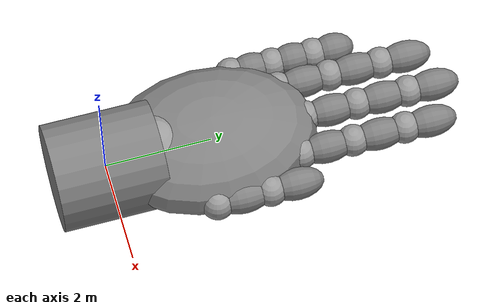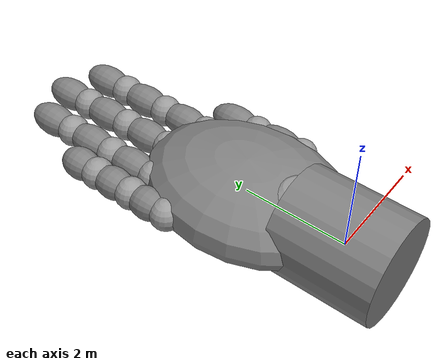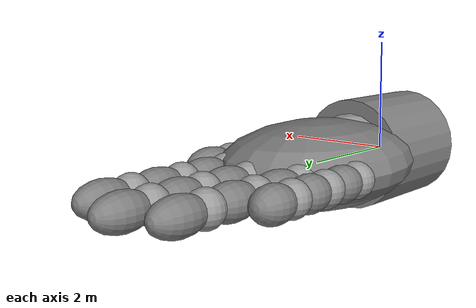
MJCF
<mujoco model="HandV3">
  <compiler angle="radian" coordinate="local" inertiafromgeom="true" settotalmass="14"/>
  <option timestep="0.01" gravity="0 0 0" iterations="20" integrator="Euler"/>
  <default>
    <joint armature='0.04' damping="0.1" limited="true"/>
    <geom friction=".0 .0 .0" density="300" margin="0.002" condim="1" contype="0" conaffinity="0"/>
  </default>

  <worldbody>
    <light diffuse=".5 .5 .5" pos="0 0 3" dir="0 0 -1"/>
    <body name="hand" pos="0 0 0">
      <geom name="arm" type="cylinder" fromto="0 -1 0 0 1 0" size="1"/>
      <body name="innerHand" pos="0 1 0">

        <geom name="wrist" type="sphere" rgba="0.6 0.6 0.6 1" pos="0 0 0" size="0.75"/>
        <geom name="palm" type="ellipsoid" pos="0 1 0"  size="1.5 2 0.75"/>

        <body name="thumb" pos="1.35 0.75 0">

          <geom name="thumbKnuckle" type="sphere" rgba="0.6 0.6 0.6 1" pos="0 0 0" size="0.3"/>
          <geom name="thumbKnuckleLimb" type="ellipsoid" size="0.3 0.5 0.3" fromto="0 0 0 0 1 0"/>
          <joint name="thumbKnuckleJoint1" type="hinge" pos="0 0 0" limited="true" axis="1 0 0" damping="0.1" range="-1.5 1.5"/>
          <joint name="thumbKnuckleJoint2" type="hinge" pos="0 0 0" limited="true" axis="0 0 1" damping="0.1" range="-1.5 1.5"/>
          <joint name="thumbKnuckleJoint3" type="hinge" pos="0 0 0" limited="true" axis="0 1 0" damping="0.1" range="-1.5 1.5"/>

          <body name="thumbInner" pos="0 1 0">

            <geom name="thumbInnerKnuckle" type="sphere" rgba="0.6 0.6 0.6 1" pos="0 0 0" size="0.3"/>
            <geom name="thumbInnerKnuckleLimb" type="ellipsoid" size="0.3 0.5 0.3" fromto="0 0 0 0 1 0"/>
            <joint name="thumbInnerKnuckleJoint1" type="hinge" pos="0 0 0" limited="true" axis="1 0 0" damping="0.1" range="-1.5 1.5"/>
          </body>
        </body>

        <body name="index" pos="0.75 2.5 0">

          <geom name="indexKnuckle" type="sphere" rgba="0.6 0.6 0.6 1" pos="0 0 0" size="0.3"/>
          <geom name="indexKnuckleLimb" type="ellipsoid" size="0.3 0.5 0.3" fromto="0 0 0 0 1 0"/>
          <joint name="indexKnuckleJoint1" type="hinge" pos="0 0 0" limited="true" axis="1 0 0" damping="0.1" range="-1.5 1.5"/>
          <joint name="indexKnuckleJoint2" type="hinge" pos="0 0 0" limited="true" axis="0 0 1" damping="0.1" range="-1.5 1.5"/>
          <joint name="indexKnuckleJoint3" type="hinge" pos="0 0 0" limited="true" axis="0 1 0" damping="0.1" range="-1.5 1.5"/>

          <body name="indexInner" pos="0 1 0">

            <geom name="indexInnerKnuckle" type="sphere" rgba="0.6 0.6 0.6 1" pos="0 0 0" size="0.3"/>
            <geom name="indexInnerKnuckleLimb" type="ellipsoid" size="0.3 0.5 0.3" fromto="0 0 0 0 1 0"/>
            <joint name="indexInnerKnuckleJoint1" type="hinge" pos="0 0 0" limited="true" axis="1 0 0" damping="0.1" range="-1.5 1.5"/>

            <body name="indexEnd" pos="0 1 0">

              <geom name="indexEndKnuckle" type="sphere" rgba="0.6 0.6 0.6 1" pos="0 0 0" size="0.3"/>
              <geom name="indexEndKnuckleLimb" type="ellipsoid" size="0.3 0.5 0.3" fromto="0 0 0 0 1 0"/>
              <joint name="indexEndKnuckleJoint1" type="hinge" pos="0 0 0" limited="true" axis="1 0 0" damping="0.1" range="-1.5 1.5"/>

            </body>

          </body>

        </body>

        <body name="middle" pos="0 2.8 0">

          <geom name="middleKnuckle" type="sphere" rgba="0.6 0.6 0.6 1" pos="0 0 0" size="0.3"/>
          <geom name="middleKnuckleLimb" type="ellipsoid" size="0.3 0.5 0.3" fromto="0 0 0 0 1 0"/>
          <joint name="middleKnuckleJoint1" type="hinge" pos="0 0 0" limited="true" axis="1 0 0" damping="0.1" range="-1.5 1.5"/>
          <joint name="middleKnuckleJoint2" type="hinge" pos="0 0 0" limited="true" axis="0 0 1" damping="0.1" range="-1.5 1.5"/>
          <joint name="middleKnuckleJoint3" type="hinge" pos="0 0 0" limited="true" axis="0 1 0" damping="0.1" range="-1.5 1.5"/>

          <body name="middleInner" pos="0 1 0">

            <geom name="middleInnerKnuckle" type="sphere" rgba="0.6 0.6 0.6 1" pos="0 0 0" size="0.3"/>
            <geom name="middleInnerKnuckleLimb" type="ellipsoid" size="0.3 0.5 0.3" fromto="0 0 0 0 1 0"/>
            <joint name="middleInnerKnuckleJoint1" type="hinge" pos="0 0 0" limited="true" axis="1 0 0" damping="0.1" range="-1.5 1.5"/>

            <body name="middleEnd" pos="0 1 0">

              <geom name="middleEndKnuckle" type="sphere" rgba="0.6 0.6 0.6 1" pos="0 0 0" size="0.3"/>
              <geom name="middleEndKnuckleLimb" type="ellipsoid" size="0.3 0.5 0.3" fromto="0 0 0 0 1 0"/>
              <joint name="middleEndKnuckleJoint1" type="hinge" pos="0 0 0" limited="true" axis="1 0 0" damping="0.1" range="-1.5 1.5"/>

            </body>

          </body>

        </body>

        <body name="ring" pos="-0.75 2.5 0">

          <geom name="ringKnuckle" type="sphere" rgba="0.6 0.6 0.6 1" pos="0 0 0" size="0.3"/>
          <geom name="ringKnuckleLimb" type="ellipsoid" size="0.3 0.5 0.3" fromto="0 0 0 0 1 0"/>
          <joint name="ringKnuckleJoint1" type="hinge" pos="0 0 0" limited="true" axis="1 0 0" damping="0.1" range="-1.5 1.5"/>
          <joint name="ringKnuckleJoint2" type="hinge" pos="0 0 0" limited="true" axis="0 0 1" damping="0.1" range="-1.5 1.5"/>
          <joint name="ringKnuckleJoint3" type="hinge" pos="0 0 0" limited="true" axis="0 1 0" damping="0.1" range="-1.5 1.5"/>

          <body name="ringInner" pos="0 1 0">

            <geom name="ringInnerKnuckle" type="sphere" rgba="0.6 0.6 0.6 1" pos="0 0 0" size="0.3"/>
            <geom name="ringInnerKnuckleLimb" type="ellipsoid" size="0.3 0.5 0.3" fromto="0 0 0 0 1 0"/>
            <joint name="ringInnerKnuckleJoint1" type="hinge" pos="0 0 0" limited="true" axis="1 0 0" damping="0.1" range="-1.5 1.5"/>

            <body name="ringEnd" pos="0 1 0">

              <geom name="ringEndKnuckle" type="sphere" rgba="0.6 0.6 0.6 1" pos="0 0 0" size="0.3"/>
              <geom name="ringEndKnuckleLimb" type="ellipsoid" size="0.3 0.5 0.3" fromto="0 0 0 0 1 0"/>
              <joint name="ringEndKnuckleJoint1" type="hinge" pos="0 0 0" limited="true" axis="1 0 0" damping="0.1" range="-1.5 1.5"/>

            </body>

          </body>

        </body>

        <body name="pinky" pos="-1.3 1.75 0">

          <geom name="pinkyKnuckle" type="sphere" rgba="0.6 0.6 0.6 1" pos="0 0 0" size="0.3"/>
          <geom name="pinkyKnuckleLimb" type="ellipsoid" size="0.3 0.5 0.3" fromto="0 0 0 0 0.8 0"/>
          <joint name="pinkyKnuckleJoint1" type="hinge" pos="0 0 0" limited="true" axis="1 0 0" damping="0.1" range="-1.5 1.5"/>
          <joint name="pinkyKnuckleJoint2" type="hinge" pos="0 0 0" limited="true" axis="0 0 1" damping="0.1" range="-1.5 1.5"/>
          <joint name="pinkyKnuckleJoint3" type="hinge" pos="0 0 0" limited="true" axis="0 1 0" damping="0.1" range="-1.5 1.5"/>

          <body name="pinkyInner" pos="0 0.8 0">

            <geom name="pinkyInnerKnuckle" type="sphere" rgba="0.6 0.6 0.6 1" pos="0 0 0" size="0.3"/>
            <geom name="pinkyInnerKnuckleLimb" type="ellipsoid" size="0.3 0.5 0.3" fromto="0 0 0 0 0.8 0"/>
            <joint name="pinkyInnerKnuckleJoint1" type="hinge" pos="0 0 0" limited="true" axis="1 0 0" damping="0.1" range="-1.5 1.5"/>

            <body name="pinkyEnd" pos="0 0.8 0">

              <geom name="pinkyEndKnuckle" type="sphere" rgba="0.6 0.6 0.6 1" pos="0 0 0" size="0.3"/>
              <geom name="pinkyEndKnuckleLimb" type="ellipsoid" size="0.3 0.5 0.3" fromto="0 0 0 0 0.8 0"/>
              <joint name="pinkyEndKnuckleJoint1" type="hinge" pos="0 0 0" limited="true" axis="1 0 0" damping="0.1" range="-1.5 1.5"/>

            </body>

          </body>

        </body>
      </body>
    </body>
  </worldbody>

  <actuator>
    <motor joint="thumbKnuckleJoint1" ctrlrange="-3.0 3.0" ctrllimited="true" />
    <motor joint="thumbInnerKnuckleJoint1" ctrlrange="-3.0 3.0" ctrllimited="true" />
    <motor joint="indexKnuckleJoint1" ctrlrange="-3.0 3.0" ctrllimited="true" />
    <motor joint="indexInnerKnuckleJoint1" ctrlrange="-3.0 3.0" ctrllimited="true" />
    <motor joint="indexEndKnuckleJoint1" ctrlrange="-3.0 3.0" ctrllimited="true"/>
    <motor joint="middleKnuckleJoint1" ctrlrange="-3.0 3.0" ctrllimited="true" />
    <motor joint="middleInnerKnuckleJoint1" ctrlrange="-3.0 3.0" ctrllimited="true" />
    <motor joint="middleEndKnuckleJoint1" ctrlrange="-3.0 3.0" ctrllimited="true"/>
    <motor joint="ringKnuckleJoint1" ctrlrange="-3.0 3.0" ctrllimited="true" />
    <motor joint="ringInnerKnuckleJoint1" ctrlrange="-3.0 3.0" ctrllimited="true" />
    <motor joint="ringEndKnuckleJoint1" ctrlrange="-3.0 3.0" ctrllimited="true"/>
    <motor joint="pinkyKnuckleJoint1" ctrlrange="-3.0 3.0" ctrllimited="true" />
    <motor joint="pinkyInnerKnuckleJoint1" ctrlrange="-3.0 3.0" ctrllimited="true" />
    <motor joint="pinkyEndKnuckleJoint1" ctrlrange="-3.0 3.0" ctrllimited="true"/>

    <motor joint="thumbKnuckleJoint2" ctrlrange="-3.0 3.0" ctrllimited="true" />
    <motor joint="indexKnuckleJoint2" ctrlrange="-3.0 3.0" ctrllimited="true" />
    <motor joint="middleKnuckleJoint2" ctrlrange="-3.0 3.0" ctrllimited="true" />
    <motor joint="ringKnuckleJoint2" ctrlrange="-3.0 3.0" ctrllimited="true" />
    <motor joint="pinkyKnuckleJoint2" ctrlrange="-3.0 3.0" ctrllimited="true" />

    <motor joint="thumbKnuckleJoint3" ctrlrange="-3.0 3.0" ctrllimited="true" />
    <motor joint="indexKnuckleJoint3" ctrlrange="-3.0 3.0" ctrllimited="true" />
    <motor joint="middleKnuckleJoint3" ctrlrange="-3.0 3.0" ctrllimited="true" />
    <motor joint="ringKnuckleJoint3" ctrlrange="-3.0 3.0" ctrllimited="true" />
    <motor joint="pinkyKnuckleJoint3" ctrlrange="-3.0 3.0" ctrllimited="true" />

  </actuator>

</mujoco>
